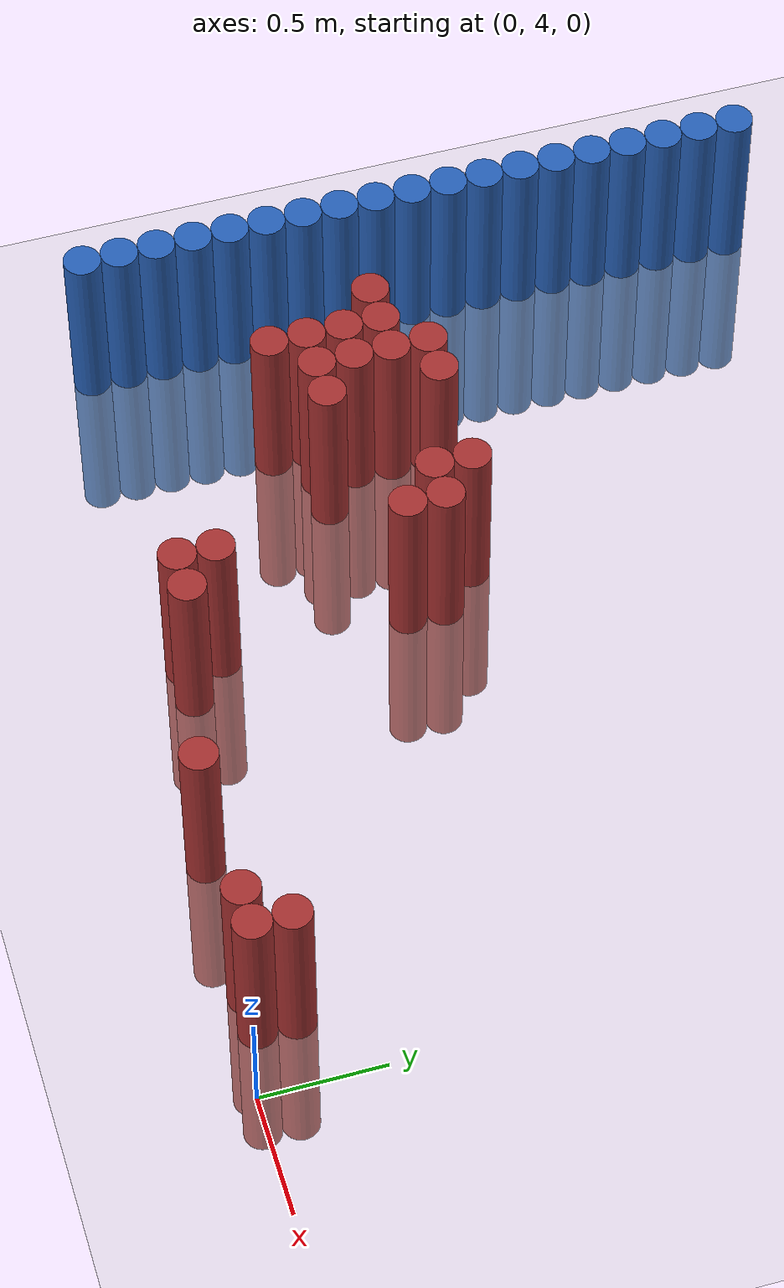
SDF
<sdf version="1.6">
 <world name="default">
  <model name="ground_plane">
   <static>1</static>
   <link name="link">
    <collision name="collision">
     <geometry><plane><normal>0 0 1</normal><size>100 100</size></plane></geometry>
     <surface><friction><ode><mu>100</mu><mu2>50</mu2></ode></friction></surface>
    </collision>
    <visual name="visual">
     <cast_shadows>0</cast_shadows>
     <geometry><plane><normal>0 0 1</normal><size>100 100</size></plane></geometry>
     <material>
      <script><uri>file://media/materials/scripts/gazebo.material</uri><name>Gazebo/Grey</name></script>
     </material>
    </visual>
   </link>
  </model>
  <model name="unit_cylinder_171">
   <static>1</static>
   <pose>-3.425000 4.225000 0.000000 0.000000 0.000000 0.000000</pose>
   <link name="link">
    <inertial>
     <mass>1</mass>
     <inertia><ixx>0.145833</ixx><ixy>0</ixy><ixz>0</ixz><iyy>0.145833</iyy><iyz>0</iyz><izz>0.125</izz></inertia>
    </inertial>
    <collision name="collision">
     <geometry><cylinder><radius>0.075000</radius><length>1.5</length></cylinder></geometry>
    </collision>
    <visual name="visual">
     <geometry><cylinder><radius>0.075000</radius><length>1.5</length></cylinder></geometry>
     <material>
      <ambient>0.152000 0.379000 0.720000 1</ambient>
      <diffuse>0.152000 0.379000 0.720000 1</diffuse>
     </material>
     <material>
      <script><name>Gazebo/Grey</name><uri>file://media/materials/scripts/gazebo.material</uri></script>
     </material>
    </visual>
   </link>
  </model>
  <model name="unit_cylinder_173">
   <static>1</static>
   <pose>-3.425000 4.375000 0.000000 0.000000 0.000000 0.000000</pose>
   <link name="link">
    <inertial>
     <mass>1</mass>
     <inertia><ixx>0.145833</ixx><ixy>0</ixy><ixz>0</ixz><iyy>0.145833</iyy><iyz>0</iyz><izz>0.125</izz></inertia>
    </inertial>
    <collision name="collision">
     <geometry><cylinder><radius>0.075000</radius><length>1.5</length></cylinder></geometry>
    </collision>
    <visual name="visual">
     <geometry><cylinder><radius>0.075000</radius><length>1.5</length></cylinder></geometry>
     <material>
      <ambient>0.152000 0.379000 0.720000 1</ambient>
      <diffuse>0.152000 0.379000 0.720000 1</diffuse>
     </material>
     <material>
      <script><name>Gazebo/Grey</name><uri>file://media/materials/scripts/gazebo.material</uri></script>
     </material>
    </visual>
   </link>
  </model>
  <model name="unit_cylinder_175">
   <static>1</static>
   <pose>-3.425000 4.525000 0.000000 0.000000 0.000000 0.000000</pose>
   <link name="link">
    <inertial>
     <mass>1</mass>
     <inertia><ixx>0.145833</ixx><ixy>0</ixy><ixz>0</ixz><iyy>0.145833</iyy><iyz>0</iyz><izz>0.125</izz></inertia>
    </inertial>
    <collision name="collision">
     <geometry><cylinder><radius>0.075000</radius><length>1.5</length></cylinder></geometry>
    </collision>
    <visual name="visual">
     <geometry><cylinder><radius>0.075000</radius><length>1.5</length></cylinder></geometry>
     <material>
      <ambient>0.152000 0.379000 0.720000 1</ambient>
      <diffuse>0.152000 0.379000 0.720000 1</diffuse>
     </material>
     <material>
      <script><name>Gazebo/Grey</name><uri>file://media/materials/scripts/gazebo.material</uri></script>
     </material>
    </visual>
   </link>
  </model>
  <model name="unit_cylinder_177">
   <static>1</static>
   <pose>-3.425000 4.675000 0.000000 0.000000 0.000000 0.000000</pose>
   <link name="link">
    <inertial>
     <mass>1</mass>
     <inertia><ixx>0.145833</ixx><ixy>0</ixy><ixz>0</ixz><iyy>0.145833</iyy><iyz>0</iyz><izz>0.125</izz></inertia>
    </inertial>
    <collision name="collision">
     <geometry><cylinder><radius>0.075000</radius><length>1.5</length></cylinder></geometry>
    </collision>
    <visual name="visual">
     <geometry><cylinder><radius>0.075000</radius><length>1.5</length></cylinder></geometry>
     <material>
      <ambient>0.152000 0.379000 0.720000 1</ambient>
      <diffuse>0.152000 0.379000 0.720000 1</diffuse>
     </material>
     <material>
      <script><name>Gazebo/Grey</name><uri>file://media/materials/scripts/gazebo.material</uri></script>
     </material>
    </visual>
   </link>
  </model>
  <model name="unit_cylinder_179">
   <static>1</static>
   <pose>-3.425000 4.825000 0.000000 0.000000 0.000000 0.000000</pose>
   <link name="link">
    <inertial>
     <mass>1</mass>
     <inertia><ixx>0.145833</ixx><ixy>0</ixy><ixz>0</ixz><iyy>0.145833</iyy><iyz>0</iyz><izz>0.125</izz></inertia>
    </inertial>
    <collision name="collision">
     <geometry><cylinder><radius>0.075000</radius><length>1.5</length></cylinder></geometry>
    </collision>
    <visual name="visual">
     <geometry><cylinder><radius>0.075000</radius><length>1.5</length></cylinder></geometry>
     <material>
      <ambient>0.152000 0.379000 0.720000 1</ambient>
      <diffuse>0.152000 0.379000 0.720000 1</diffuse>
     </material>
     <material>
      <script><name>Gazebo/Grey</name><uri>file://media/materials/scripts/gazebo.material</uri></script>
     </material>
    </visual>
   </link>
  </model>
  <model name="unit_cylinder_181">
   <static>1</static>
   <pose>-3.425000 4.975000 0.000000 0.000000 0.000000 0.000000</pose>
   <link name="link">
    <inertial>
     <mass>1</mass>
     <inertia><ixx>0.145833</ixx><ixy>0</ixy><ixz>0</ixz><iyy>0.145833</iyy><iyz>0</iyz><izz>0.125</izz></inertia>
    </inertial>
    <collision name="collision">
     <geometry><cylinder><radius>0.075000</radius><length>1.5</length></cylinder></geometry>
    </collision>
    <visual name="visual">
     <geometry><cylinder><radius>0.075000</radius><length>1.5</length></cylinder></geometry>
     <material>
      <ambient>0.152000 0.379000 0.720000 1</ambient>
      <diffuse>0.152000 0.379000 0.720000 1</diffuse>
     </material>
     <material>
      <script><name>Gazebo/Grey</name><uri>file://media/materials/scripts/gazebo.material</uri></script>
     </material>
    </visual>
   </link>
  </model>
  <model name="unit_cylinder_183">
   <static>1</static>
   <pose>-3.425000 5.125000 0.000000 0.000000 0.000000 0.000000</pose>
   <link name="link">
    <inertial>
     <mass>1</mass>
     <inertia><ixx>0.145833</ixx><ixy>0</ixy><ixz>0</ixz><iyy>0.145833</iyy><iyz>0</iyz><izz>0.125</izz></inertia>
    </inertial>
    <collision name="collision">
     <geometry><cylinder><radius>0.075000</radius><length>1.5</length></cylinder></geometry>
    </collision>
    <visual name="visual">
     <geometry><cylinder><radius>0.075000</radius><length>1.5</length></cylinder></geometry>
     <material>
      <ambient>0.152000 0.379000 0.720000 1</ambient>
      <diffuse>0.152000 0.379000 0.720000 1</diffuse>
     </material>
     <material>
      <script><name>Gazebo/Grey</name><uri>file://media/materials/scripts/gazebo.material</uri></script>
     </material>
    </visual>
   </link>
  </model>
  <model name="unit_cylinder_185">
   <static>1</static>
   <pose>-3.425000 5.275000 0.000000 0.000000 0.000000 0.000000</pose>
   <link name="link">
    <inertial>
     <mass>1</mass>
     <inertia><ixx>0.145833</ixx><ixy>0</ixy><ixz>0</ixz><iyy>0.145833</iyy><iyz>0</iyz><izz>0.125</izz></inertia>
    </inertial>
    <collision name="collision">
     <geometry><cylinder><radius>0.075000</radius><length>1.5</length></cylinder></geometry>
    </collision>
    <visual name="visual">
     <geometry><cylinder><radius>0.075000</radius><length>1.5</length></cylinder></geometry>
     <material>
      <ambient>0.152000 0.379000 0.720000 1</ambient>
      <diffuse>0.152000 0.379000 0.720000 1</diffuse>
     </material>
     <material>
      <script><name>Gazebo/Grey</name><uri>file://media/materials/scripts/gazebo.material</uri></script>
     </material>
    </visual>
   </link>
  </model>
  <model name="unit_cylinder_187">
   <static>1</static>
   <pose>-3.425000 5.425000 0.000000 0.000000 0.000000 0.000000</pose>
   <link name="link">
    <inertial>
     <mass>1</mass>
     <inertia><ixx>0.145833</ixx><ixy>0</ixy><ixz>0</ixz><iyy>0.145833</iyy><iyz>0</iyz><izz>0.125</izz></inertia>
    </inertial>
    <collision name="collision">
     <geometry><cylinder><radius>0.075000</radius><length>1.5</length></cylinder></geometry>
    </collision>
    <visual name="visual">
     <geometry><cylinder><radius>0.075000</radius><length>1.5</length></cylinder></geometry>
     <material>
      <ambient>0.152000 0.379000 0.720000 1</ambient>
      <diffuse>0.152000 0.379000 0.720000 1</diffuse>
     </material>
     <material>
      <script><name>Gazebo/Grey</name><uri>file://media/materials/scripts/gazebo.material</uri></script>
     </material>
    </visual>
   </link>
  </model>
  <model name="unit_cylinder_189">
   <static>1</static>
   <pose>-3.425000 5.575000 0.000000 0.000000 0.000000 0.000000</pose>
   <link name="link">
    <inertial>
     <mass>1</mass>
     <inertia><ixx>0.145833</ixx><ixy>0</ixy><ixz>0</ixz><iyy>0.145833</iyy><iyz>0</iyz><izz>0.125</izz></inertia>
    </inertial>
    <collision name="collision">
     <geometry><cylinder><radius>0.075000</radius><length>1.5</length></cylinder></geometry>
    </collision>
    <visual name="visual">
     <geometry><cylinder><radius>0.075000</radius><length>1.5</length></cylinder></geometry>
     <material>
      <ambient>0.152000 0.379000 0.720000 1</ambient>
      <diffuse>0.152000 0.379000 0.720000 1</diffuse>
     </material>
     <material>
      <script><name>Gazebo/Grey</name><uri>file://media/materials/scripts/gazebo.material</uri></script>
     </material>
    </visual>
   </link>
  </model>
  <model name="unit_cylinder_191">
   <static>1</static>
   <pose>-3.425000 5.725000 0.000000 0.000000 0.000000 0.000000</pose>
   <link name="link">
    <inertial>
     <mass>1</mass>
     <inertia><ixx>0.145833</ixx><ixy>0</ixy><ixz>0</ixz><iyy>0.145833</iyy><iyz>0</iyz><izz>0.125</izz></inertia>
    </inertial>
    <collision name="collision">
     <geometry><cylinder><radius>0.075000</radius><length>1.5</length></cylinder></geometry>
    </collision>
    <visual name="visual">
     <geometry><cylinder><radius>0.075000</radius><length>1.5</length></cylinder></geometry>
     <material>
      <ambient>0.152000 0.379000 0.720000 1</ambient>
      <diffuse>0.152000 0.379000 0.720000 1</diffuse>
     </material>
     <material>
      <script><name>Gazebo/Grey</name><uri>file://media/materials/scripts/gazebo.material</uri></script>
     </material>
    </visual>
   </link>
  </model>
  <model name="unit_cylinder_193">
   <static>1</static>
   <pose>-3.425000 5.875000 0.000000 0.000000 0.000000 0.000000</pose>
   <link name="link">
    <inertial>
     <mass>1</mass>
     <inertia><ixx>0.145833</ixx><ixy>0</ixy><ixz>0</ixz><iyy>0.145833</iyy><iyz>0</iyz><izz>0.125</izz></inertia>
    </inertial>
    <collision name="collision">
     <geometry><cylinder><radius>0.075000</radius><length>1.5</length></cylinder></geometry>
    </collision>
    <visual name="visual">
     <geometry><cylinder><radius>0.075000</radius><length>1.5</length></cylinder></geometry>
     <material>
      <ambient>0.152000 0.379000 0.720000 1</ambient>
      <diffuse>0.152000 0.379000 0.720000 1</diffuse>
     </material>
     <material>
      <script><name>Gazebo/Grey</name><uri>file://media/materials/scripts/gazebo.material</uri></script>
     </material>
    </visual>
   </link>
  </model>
  <model name="unit_cylinder_195">
   <static>1</static>
   <pose>-3.425000 6.025000 0.000000 0.000000 0.000000 0.000000</pose>
   <link name="link">
    <inertial>
     <mass>1</mass>
     <inertia><ixx>0.145833</ixx><ixy>0</ixy><ixz>0</ixz><iyy>0.145833</iyy><iyz>0</iyz><izz>0.125</izz></inertia>
    </inertial>
    <collision name="collision">
     <geometry><cylinder><radius>0.075000</radius><length>1.5</length></cylinder></geometry>
    </collision>
    <visual name="visual">
     <geometry><cylinder><radius>0.075000</radius><length>1.5</length></cylinder></geometry>
     <material>
      <ambient>0.152000 0.379000 0.720000 1</ambient>
      <diffuse>0.152000 0.379000 0.720000 1</diffuse>
     </material>
     <material>
      <script><name>Gazebo/Grey</name><uri>file://media/materials/scripts/gazebo.material</uri></script>
     </material>
    </visual>
   </link>
  </model>
  <model name="unit_cylinder_197">
   <static>1</static>
   <pose>-3.425000 6.175000 0.000000 0.000000 0.000000 0.000000</pose>
   <link name="link">
    <inertial>
     <mass>1</mass>
     <inertia><ixx>0.145833</ixx><ixy>0</ixy><ixz>0</ixz><iyy>0.145833</iyy><iyz>0</iyz><izz>0.125</izz></inertia>
    </inertial>
    <collision name="collision">
     <geometry><cylinder><radius>0.075000</radius><length>1.5</length></cylinder></geometry>
    </collision>
    <visual name="visual">
     <geometry><cylinder><radius>0.075000</radius><length>1.5</length></cylinder></geometry>
     <material>
      <ambient>0.152000 0.379000 0.720000 1</ambient>
      <diffuse>0.152000 0.379000 0.720000 1</diffuse>
     </material>
     <material>
      <script><name>Gazebo/Grey</name><uri>file://media/materials/scripts/gazebo.material</uri></script>
     </material>
    </visual>
   </link>
  </model>
  <model name="unit_cylinder_199">
   <static>1</static>
   <pose>-3.425000 6.325000 0.000000 0.000000 0.000000 0.000000</pose>
   <link name="link">
    <inertial>
     <mass>1</mass>
     <inertia><ixx>0.145833</ixx><ixy>0</ixy><ixz>0</ixz><iyy>0.145833</iyy><iyz>0</iyz><izz>0.125</izz></inertia>
    </inertial>
    <collision name="collision">
     <geometry><cylinder><radius>0.075000</radius><length>1.5</length></cylinder></geometry>
    </collision>
    <visual name="visual">
     <geometry><cylinder><radius>0.075000</radius><length>1.5</length></cylinder></geometry>
     <material>
      <ambient>0.152000 0.379000 0.720000 1</ambient>
      <diffuse>0.152000 0.379000 0.720000 1</diffuse>
     </material>
     <material>
      <script><name>Gazebo/Grey</name><uri>file://media/materials/scripts/gazebo.material</uri></script>
     </material>
    </visual>
   </link>
  </model>
  <model name="unit_cylinder_201">
   <static>1</static>
   <pose>-3.425000 6.475000 0.000000 0.000000 0.000000 0.000000</pose>
   <link name="link">
    <inertial>
     <mass>1</mass>
     <inertia><ixx>0.145833</ixx><ixy>0</ixy><ixz>0</ixz><iyy>0.145833</iyy><iyz>0</iyz><izz>0.125</izz></inertia>
    </inertial>
    <collision name="collision">
     <geometry><cylinder><radius>0.075000</radius><length>1.5</length></cylinder></geometry>
    </collision>
    <visual name="visual">
     <geometry><cylinder><radius>0.075000</radius><length>1.5</length></cylinder></geometry>
     <material>
      <ambient>0.152000 0.379000 0.720000 1</ambient>
      <diffuse>0.152000 0.379000 0.720000 1</diffuse>
     </material>
     <material>
      <script><name>Gazebo/Grey</name><uri>file://media/materials/scripts/gazebo.material</uri></script>
     </material>
    </visual>
   </link>
  </model>
  <model name="unit_cylinder_203">
   <static>1</static>
   <pose>-3.425000 6.625000 0.000000 0.000000 0.000000 0.000000</pose>
   <link name="link">
    <inertial>
     <mass>1</mass>
     <inertia><ixx>0.145833</ixx><ixy>0</ixy><ixz>0</ixz><iyy>0.145833</iyy><iyz>0</iyz><izz>0.125</izz></inertia>
    </inertial>
    <collision name="collision">
     <geometry><cylinder><radius>0.075000</radius><length>1.5</length></cylinder></geometry>
    </collision>
    <visual name="visual">
     <geometry><cylinder><radius>0.075000</radius><length>1.5</length></cylinder></geometry>
     <material>
      <ambient>0.152000 0.379000 0.720000 1</ambient>
      <diffuse>0.152000 0.379000 0.720000 1</diffuse>
     </material>
     <material>
      <script><name>Gazebo/Grey</name><uri>file://media/materials/scripts/gazebo.material</uri></script>
     </material>
    </visual>
   </link>
  </model>
  <model name="unit_cylinder_205">
   <static>1</static>
   <pose>-3.425000 6.775000 0.000000 0.000000 0.000000 0.000000</pose>
   <link name="link">
    <inertial>
     <mass>1</mass>
     <inertia><ixx>0.145833</ixx><ixy>0</ixy><ixz>0</ixz><iyy>0.145833</iyy><iyz>0</iyz><izz>0.125</izz></inertia>
    </inertial>
    <collision name="collision">
     <geometry><cylinder><radius>0.075000</radius><length>1.5</length></cylinder></geometry>
    </collision>
    <visual name="visual">
     <geometry><cylinder><radius>0.075000</radius><length>1.5</length></cylinder></geometry>
     <material>
      <ambient>0.152000 0.379000 0.720000 1</ambient>
      <diffuse>0.152000 0.379000 0.720000 1</diffuse>
     </material>
     <material>
      <script><name>Gazebo/Grey</name><uri>file://media/materials/scripts/gazebo.material</uri></script>
     </material>
    </visual>
   </link>
  </model>
  <model name="unit_cylinder_207">
   <static>1</static>
   <pose>-3.425000 6.925000 0.000000 0.000000 0.000000 0.000000</pose>
   <link name="link">
    <inertial>
     <mass>1</mass>
     <inertia><ixx>0.145833</ixx><ixy>0</ixy><ixz>0</ixz><iyy>0.145833</iyy><iyz>0</iyz><izz>0.125</izz></inertia>
    </inertial>
    <collision name="collision">
     <geometry><cylinder><radius>0.075000</radius><length>1.5</length></cylinder></geometry>
    </collision>
    <visual name="visual">
     <geometry><cylinder><radius>0.075000</radius><length>1.5</length></cylinder></geometry>
     <material>
      <ambient>0.152000 0.379000 0.720000 1</ambient>
      <diffuse>0.152000 0.379000 0.720000 1</diffuse>
     </material>
     <material>
      <script><name>Gazebo/Grey</name><uri>file://media/materials/scripts/gazebo.material</uri></script>
     </material>
    </visual>
   </link>
  </model>
  <model name="unit_cylinder_249">
   <static>1</static>
   <pose>-3.425000 4.225000 0.000000 0.000000 0.000000 0.000000</pose>
   <link name="link">
    <inertial>
     <mass>1</mass>
     <inertia><ixx>0.145833</ixx><ixy>0</ixy><ixz>0</ixz><iyy>0.145833</iyy><iyz>0</iyz><izz>0.125</izz></inertia>
    </inertial>
    <collision name="collision">
     <geometry><cylinder><radius>0.075000</radius><length>1.5</length></cylinder></geometry>
    </collision>
    <visual name="visual">
     <geometry><cylinder><radius>0.075000</radius><length>1.5</length></cylinder></geometry>
     <material>
      <ambient>0.152000 0.379000 0.720000 1</ambient>
      <diffuse>0.152000 0.379000 0.720000 1</diffuse>
     </material>
     <material>
      <script><name>Gazebo/Grey</name><uri>file://media/materials/scripts/gazebo.material</uri></script>
     </material>
    </visual>
   </link>
  </model>
  <model name="unit_cylinder_250">
   <static>1</static>
   <pose>-3.425000 4.375000 0.000000 0.000000 0.000000 0.000000</pose>
   <link name="link">
    <inertial>
     <mass>1</mass>
     <inertia><ixx>0.145833</ixx><ixy>0</ixy><ixz>0</ixz><iyy>0.145833</iyy><iyz>0</iyz><izz>0.125</izz></inertia>
    </inertial>
    <collision name="collision">
     <geometry><cylinder><radius>0.075000</radius><length>1.5</length></cylinder></geometry>
    </collision>
    <visual name="visual">
     <geometry><cylinder><radius>0.075000</radius><length>1.5</length></cylinder></geometry>
     <material>
      <ambient>0.152000 0.379000 0.720000 1</ambient>
      <diffuse>0.152000 0.379000 0.720000 1</diffuse>
     </material>
     <material>
      <script><name>Gazebo/Grey</name><uri>file://media/materials/scripts/gazebo.material</uri></script>
     </material>
    </visual>
   </link>
  </model>
  <model name="unit_cylinder_251">
   <static>1</static>
   <pose>-3.425000 4.525000 0.000000 0.000000 0.000000 0.000000</pose>
   <link name="link">
    <inertial>
     <mass>1</mass>
     <inertia><ixx>0.145833</ixx><ixy>0</ixy><ixz>0</ixz><iyy>0.145833</iyy><iyz>0</iyz><izz>0.125</izz></inertia>
    </inertial>
    <collision name="collision">
     <geometry><cylinder><radius>0.075000</radius><length>1.5</length></cylinder></geometry>
    </collision>
    <visual name="visual">
     <geometry><cylinder><radius>0.075000</radius><length>1.5</length></cylinder></geometry>
     <material>
      <ambient>0.152000 0.379000 0.720000 1</ambient>
      <diffuse>0.152000 0.379000 0.720000 1</diffuse>
     </material>
     <material>
      <script><name>Gazebo/Grey</name><uri>file://media/materials/scripts/gazebo.material</uri></script>
     </material>
    </visual>
   </link>
  </model>
  <model name="unit_cylinder_252">
   <static>1</static>
   <pose>-3.425000 4.675000 0.000000 0.000000 0.000000 0.000000</pose>
   <link name="link">
    <inertial>
     <mass>1</mass>
     <inertia><ixx>0.145833</ixx><ixy>0</ixy><ixz>0</ixz><iyy>0.145833</iyy><iyz>0</iyz><izz>0.125</izz></inertia>
    </inertial>
    <collision name="collision">
     <geometry><cylinder><radius>0.075000</radius><length>1.5</length></cylinder></geometry>
    </collision>
    <visual name="visual">
     <geometry><cylinder><radius>0.075000</radius><length>1.5</length></cylinder></geometry>
     <material>
      <ambient>0.152000 0.379000 0.720000 1</ambient>
      <diffuse>0.152000 0.379000 0.720000 1</diffuse>
     </material>
     <material>
      <script><name>Gazebo/Grey</name><uri>file://media/materials/scripts/gazebo.material</uri></script>
     </material>
    </visual>
   </link>
  </model>
  <model name="unit_cylinder_253">
   <static>1</static>
   <pose>-3.425000 4.825000 0.000000 0.000000 0.000000 0.000000</pose>
   <link name="link">
    <inertial>
     <mass>1</mass>
     <inertia><ixx>0.145833</ixx><ixy>0</ixy><ixz>0</ixz><iyy>0.145833</iyy><iyz>0</iyz><izz>0.125</izz></inertia>
    </inertial>
    <collision name="collision">
     <geometry><cylinder><radius>0.075000</radius><length>1.5</length></cylinder></geometry>
    </collision>
    <visual name="visual">
     <geometry><cylinder><radius>0.075000</radius><length>1.5</length></cylinder></geometry>
     <material>
      <ambient>0.152000 0.379000 0.720000 1</ambient>
      <diffuse>0.152000 0.379000 0.720000 1</diffuse>
     </material>
     <material>
      <script><name>Gazebo/Grey</name><uri>file://media/materials/scripts/gazebo.material</uri></script>
     </material>
    </visual>
   </link>
  </model>
  <model name="unit_cylinder_254">
   <static>1</static>
   <pose>-3.425000 4.975000 0.000000 0.000000 0.000000 0.000000</pose>
   <link name="link">
    <inertial>
     <mass>1</mass>
     <inertia><ixx>0.145833</ixx><ixy>0</ixy><ixz>0</ixz><iyy>0.145833</iyy><iyz>0</iyz><izz>0.125</izz></inertia>
    </inertial>
    <collision name="collision">
     <geometry><cylinder><radius>0.075000</radius><length>1.5</length></cylinder></geometry>
    </collision>
    <visual name="visual">
     <geometry><cylinder><radius>0.075000</radius><length>1.5</length></cylinder></geometry>
     <material>
      <ambient>0.152000 0.379000 0.720000 1</ambient>
      <diffuse>0.152000 0.379000 0.720000 1</diffuse>
     </material>
     <material>
      <script><name>Gazebo/Grey</name><uri>file://media/materials/scripts/gazebo.material</uri></script>
     </material>
    </visual>
   </link>
  </model>
  <model name="unit_cylinder_255">
   <static>1</static>
   <pose>-3.425000 5.125000 0.000000 0.000000 0.000000 0.000000</pose>
   <link name="link">
    <inertial>
     <mass>1</mass>
     <inertia><ixx>0.145833</ixx><ixy>0</ixy><ixz>0</ixz><iyy>0.145833</iyy><iyz>0</iyz><izz>0.125</izz></inertia>
    </inertial>
    <collision name="collision">
     <geometry><cylinder><radius>0.075000</radius><length>1.5</length></cylinder></geometry>
    </collision>
    <visual name="visual">
     <geometry><cylinder><radius>0.075000</radius><length>1.5</length></cylinder></geometry>
     <material>
      <ambient>0.152000 0.379000 0.720000 1</ambient>
      <diffuse>0.152000 0.379000 0.720000 1</diffuse>
     </material>
     <material>
      <script><name>Gazebo/Grey</name><uri>file://media/materials/scripts/gazebo.material</uri></script>
     </material>
    </visual>
   </link>
  </model>
  <model name="unit_cylinder_256">
   <static>1</static>
   <pose>-3.425000 5.275000 0.000000 0.000000 0.000000 0.000000</pose>
   <link name="link">
    <inertial>
     <mass>1</mass>
     <inertia><ixx>0.145833</ixx><ixy>0</ixy><ixz>0</ixz><iyy>0.145833</iyy><iyz>0</iyz><izz>0.125</izz></inertia>
    </inertial>
    <collision name="collision">
     <geometry><cylinder><radius>0.075000</radius><length>1.5</length></cylinder></geometry>
    </collision>
    <visual name="visual">
     <geometry><cylinder><radius>0.075000</radius><length>1.5</length></cylinder></geometry>
     <material>
      <ambient>0.152000 0.379000 0.720000 1</ambient>
      <diffuse>0.152000 0.379000 0.720000 1</diffuse>
     </material>
     <material>
      <script><name>Gazebo/Grey</name><uri>file://media/materials/scripts/gazebo.material</uri></script>
     </material>
    </visual>
   </link>
  </model>
  <model name="unit_cylinder_257">
   <static>1</static>
   <pose>-3.425000 5.425000 0.000000 0.000000 0.000000 0.000000</pose>
   <link name="link">
    <inertial>
     <mass>1</mass>
     <inertia><ixx>0.145833</ixx><ixy>0</ixy><ixz>0</ixz><iyy>0.145833</iyy><iyz>0</iyz><izz>0.125</izz></inertia>
    </inertial>
    <collision name="collision">
     <geometry><cylinder><radius>0.075000</radius><length>1.5</length></cylinder></geometry>
    </collision>
    <visual name="visual">
     <geometry><cylinder><radius>0.075000</radius><length>1.5</length></cylinder></geometry>
     <material>
      <ambient>0.152000 0.379000 0.720000 1</ambient>
      <diffuse>0.152000 0.379000 0.720000 1</diffuse>
     </material>
     <material>
      <script><name>Gazebo/Grey</name><uri>file://media/materials/scripts/gazebo.material</uri></script>
     </material>
    </visual>
   </link>
  </model>
  <model name="unit_cylinder_289">
   <static>1</static>
   <pose>-2.975000 5.275000 0.000000 0.000000 0.000000 0.000000</pose>
   <link name="link">
    <inertial>
     <mass>1</mass>
     <inertia><ixx>0.145833</ixx><ixy>0</ixy><ixz>0</ixz><iyy>0.145833</iyy><iyz>0</iyz><izz>0.125</izz></inertia>
    </inertial>
    <collision name="collision">
     <geometry><cylinder><radius>0.075000</radius><length>1.5</length></cylinder></geometry>
    </collision>
    <visual name="visual">
     <geometry><cylinder><radius>0.075000</radius><length>1.5</length></cylinder></geometry>
     <material>
      <ambient>0.648000 0.192000 0.192000 1</ambient>
      <diffuse>0.648000 0.192000 0.192000 1</diffuse>
     </material>
     <material>
      <script><name>Gazebo/Grey</name><uri>file://media/materials/scripts/gazebo.material</uri></script>
     </material>
    </visual>
   </link>
  </model>
  <model name="unit_cylinder_295">
   <static>1</static>
   <pose>-2.825000 4.825000 0.000000 0.000000 0.000000 0.000000</pose>
   <link name="link">
    <inertial>
     <mass>1</mass>
     <inertia><ixx>0.145833</ixx><ixy>0</ixy><ixz>0</ixz><iyy>0.145833</iyy><iyz>0</iyz><izz>0.125</izz></inertia>
    </inertial>
    <collision name="collision">
     <geometry><cylinder><radius>0.075000</radius><length>1.5</length></cylinder></geometry>
    </collision>
    <visual name="visual">
     <geometry><cylinder><radius>0.075000</radius><length>1.5</length></cylinder></geometry>
     <material>
      <ambient>0.648000 0.192000 0.192000 1</ambient>
      <diffuse>0.648000 0.192000 0.192000 1</diffuse>
     </material>
     <material>
      <script><name>Gazebo/Grey</name><uri>file://media/materials/scripts/gazebo.material</uri></script>
     </material>
    </visual>
   </link>
  </model>
  <model name="unit_cylinder_296">
   <static>1</static>
   <pose>-2.825000 4.975000 0.000000 0.000000 0.000000 0.000000</pose>
   <link name="link">
    <inertial>
     <mass>1</mass>
     <inertia><ixx>0.145833</ixx><ixy>0</ixy><ixz>0</ixz><iyy>0.145833</iyy><iyz>0</iyz><izz>0.125</izz></inertia>
    </inertial>
    <collision name="collision">
     <geometry><cylinder><radius>0.075000</radius><length>1.5</length></cylinder></geometry>
    </collision>
    <visual name="visual">
     <geometry><cylinder><radius>0.075000</radius><length>1.5</length></cylinder></geometry>
     <material>
      <ambient>0.648000 0.192000 0.192000 1</ambient>
      <diffuse>0.648000 0.192000 0.192000 1</diffuse>
     </material>
     <material>
      <script><name>Gazebo/Grey</name><uri>file://media/materials/scripts/gazebo.material</uri></script>
     </material>
    </visual>
   </link>
  </model>
  <model name="unit_cylinder_297">
   <static>1</static>
   <pose>-2.825000 5.125000 0.000000 0.000000 0.000000 0.000000</pose>
   <link name="link">
    <inertial>
     <mass>1</mass>
     <inertia><ixx>0.145833</ixx><ixy>0</ixy><ixz>0</ixz><iyy>0.145833</iyy><iyz>0</iyz><izz>0.125</izz></inertia>
    </inertial>
    <collision name="collision">
     <geometry><cylinder><radius>0.075000</radius><length>1.5</length></cylinder></geometry>
    </collision>
    <visual name="visual">
     <geometry><cylinder><radius>0.075000</radius><length>1.5</length></cylinder></geometry>
     <material>
      <ambient>0.648000 0.192000 0.192000 1</ambient>
      <diffuse>0.648000 0.192000 0.192000 1</diffuse>
     </material>
     <material>
      <script><name>Gazebo/Grey</name><uri>file://media/materials/scripts/gazebo.material</uri></script>
     </material>
    </visual>
   </link>
  </model>
  <model name="unit_cylinder_298">
   <static>1</static>
   <pose>-2.825000 5.275000 0.000000 0.000000 0.000000 0.000000</pose>
   <link name="link">
    <inertial>
     <mass>1</mass>
     <inertia><ixx>0.145833</ixx><ixy>0</ixy><ixz>0</ixz><iyy>0.145833</iyy><iyz>0</iyz><izz>0.125</izz></inertia>
    </inertial>
    <collision name="collision">
     <geometry><cylinder><radius>0.075000</radius><length>1.5</length></cylinder></geometry>
    </collision>
    <visual name="visual">
     <geometry><cylinder><radius>0.075000</radius><length>1.5</length></cylinder></geometry>
     <material>
      <ambient>0.648000 0.192000 0.192000 1</ambient>
      <diffuse>0.648000 0.192000 0.192000 1</diffuse>
     </material>
     <material>
      <script><name>Gazebo/Grey</name><uri>file://media/materials/scripts/gazebo.material</uri></script>
     </material>
    </visual>
   </link>
  </model>
  <model name="unit_cylinder_307">
   <static>1</static>
   <pose>-2.675000 4.975000 0.000000 0.000000 0.000000 0.000000</pose>
   <link name="link">
    <inertial>
     <mass>1</mass>
     <inertia><ixx>0.145833</ixx><ixy>0</ixy><ixz>0</ixz><iyy>0.145833</iyy><iyz>0</iyz><izz>0.125</izz></inertia>
    </inertial>
    <collision name="collision">
     <geometry><cylinder><radius>0.075000</radius><length>1.5</length></cylinder></geometry>
    </collision>
    <visual name="visual">
     <geometry><cylinder><radius>0.075000</radius><length>1.5</length></cylinder></geometry>
     <material>
      <ambient>0.648000 0.192000 0.192000 1</ambient>
      <diffuse>0.648000 0.192000 0.192000 1</diffuse>
     </material>
     <material>
      <script><name>Gazebo/Grey</name><uri>file://media/materials/scripts/gazebo.material</uri></script>
     </material>
    </visual>
   </link>
  </model>
  <model name="unit_cylinder_308">
   <static>1</static>
   <pose>-2.675000 5.125000 0.000000 0.000000 0.000000 0.000000</pose>
   <link name="link">
    <inertial>
     <mass>1</mass>
     <inertia><ixx>0.145833</ixx><ixy>0</ixy><ixz>0</ixz><iyy>0.145833</iyy><iyz>0</iyz><izz>0.125</izz></inertia>
    </inertial>
    <collision name="collision">
     <geometry><cylinder><radius>0.075000</radius><length>1.5</length></cylinder></geometry>
    </collision>
    <visual name="visual">
     <geometry><cylinder><radius>0.075000</radius><length>1.5</length></cylinder></geometry>
     <material>
      <ambient>0.648000 0.192000 0.192000 1</ambient>
      <diffuse>0.648000 0.192000 0.192000 1</diffuse>
     </material>
     <material>
      <script><name>Gazebo/Grey</name><uri>file://media/materials/scripts/gazebo.material</uri></script>
     </material>
    </visual>
   </link>
  </model>
  <model name="unit_cylinder_309">
   <static>1</static>
   <pose>-2.675000 5.275000 0.000000 0.000000 0.000000 0.000000</pose>
   <link name="link">
    <inertial>
     <mass>1</mass>
     <inertia><ixx>0.145833</ixx><ixy>0</ixy><ixz>0</ixz><iyy>0.145833</iyy><iyz>0</iyz><izz>0.125</izz></inertia>
    </inertial>
    <collision name="collision">
     <geometry><cylinder><radius>0.075000</radius><length>1.5</length></cylinder></geometry>
    </collision>
    <visual name="visual">
     <geometry><cylinder><radius>0.075000</radius><length>1.5</length></cylinder></geometry>
     <material>
      <ambient>0.648000 0.192000 0.192000 1</ambient>
      <diffuse>0.648000 0.192000 0.192000 1</diffuse>
     </material>
     <material>
      <script><name>Gazebo/Grey</name><uri>file://media/materials/scripts/gazebo.material</uri></script>
     </material>
    </visual>
   </link>
  </model>
  <model name="unit_cylinder_310">
   <static>1</static>
   <pose>-2.675000 5.425000 0.000000 0.000000 0.000000 0.000000</pose>
   <link name="link">
    <inertial>
     <mass>1</mass>
     <inertia><ixx>0.145833</ixx><ixy>0</ixy><ixz>0</ixz><iyy>0.145833</iyy><iyz>0</iyz><izz>0.125</izz></inertia>
    </inertial>
    <collision name="collision">
     <geometry><cylinder><radius>0.075000</radius><length>1.5</length></cylinder></geometry>
    </collision>
    <visual name="visual">
     <geometry><cylinder><radius>0.075000</radius><length>1.5</length></cylinder></geometry>
     <material>
      <ambient>0.648000 0.192000 0.192000 1</ambient>
      <diffuse>0.648000 0.192000 0.192000 1</diffuse>
     </material>
     <material>
      <script><name>Gazebo/Grey</name><uri>file://media/materials/scripts/gazebo.material</uri></script>
     </material>
    </visual>
   </link>
  </model>
  <model name="unit_cylinder_323">
   <static>1</static>
   <pose>-2.525000 4.975000 0.000000 0.000000 0.000000 0.000000</pose>
   <link name="link">
    <inertial>
     <mass>1</mass>
     <inertia><ixx>0.145833</ixx><ixy>0</ixy><ixz>0</ixz><iyy>0.145833</iyy><iyz>0</iyz><izz>0.125</izz></inertia>
    </inertial>
    <collision name="collision">
     <geometry><cylinder><radius>0.075000</radius><length>1.5</length></cylinder></geometry>
    </collision>
    <visual name="visual">
     <geometry><cylinder><radius>0.075000</radius><length>1.5</length></cylinder></geometry>
     <material>
      <ambient>0.648000 0.192000 0.192000 1</ambient>
      <diffuse>0.648000 0.192000 0.192000 1</diffuse>
     </material>
     <material>
      <script><name>Gazebo/Grey</name><uri>file://media/materials/scripts/gazebo.material</uri></script>
     </material>
    </visual>
   </link>
  </model>
  <model name="unit_cylinder_324">
   <static>1</static>
   <pose>-2.525000 5.425000 0.000000 0.000000 0.000000 0.000000</pose>
   <link name="link">
    <inertial>
     <mass>1</mass>
     <inertia><ixx>0.145833</ixx><ixy>0</ixy><ixz>0</ixz><iyy>0.145833</iyy><iyz>0</iyz><izz>0.125</izz></inertia>
    </inertial>
    <collision name="collision">
     <geometry><cylinder><radius>0.075000</radius><length>1.5</length></cylinder></geometry>
    </collision>
    <visual name="visual">
     <geometry><cylinder><radius>0.075000</radius><length>1.5</length></cylinder></geometry>
     <material>
      <ambient>0.648000 0.192000 0.192000 1</ambient>
      <diffuse>0.648000 0.192000 0.192000 1</diffuse>
     </material>
     <material>
      <script><name>Gazebo/Grey</name><uri>file://media/materials/scripts/gazebo.material</uri></script>
     </material>
    </visual>
   </link>
  </model>
  <model name="unit_cylinder_355">
   <static>1</static>
   <pose>-2.075000 5.275000 0.000000 0.000000 0.000000 0.000000</pose>
   <link name="link">
    <inertial>
     <mass>1</mass>
     <inertia><ixx>0.145833</ixx><ixy>0</ixy><ixz>0</ixz><iyy>0.145833</iyy><iyz>0</iyz><izz>0.125</izz></inertia>
    </inertial>
    <collision name="collision">
     <geometry><cylinder><radius>0.075000</radius><length>1.5</length></cylinder></geometry>
    </collision>
    <visual name="visual">
     <geometry><cylinder><radius>0.075000</radius><length>1.5</length></cylinder></geometry>
     <material>
      <ambient>0.648000 0.192000 0.192000 1</ambient>
      <diffuse>0.648000 0.192000 0.192000 1</diffuse>
     </material>
     <material>
      <script><name>Gazebo/Grey</name><uri>file://media/materials/scripts/gazebo.material</uri></script>
     </material>
    </visual>
   </link>
  </model>
  <model name="unit_cylinder_356">
   <static>1</static>
   <pose>-2.075000 5.425000 0.000000 0.000000 0.000000 0.000000</pose>
   <link name="link">
    <inertial>
     <mass>1</mass>
     <inertia><ixx>0.145833</ixx><ixy>0</ixy><ixz>0</ixz><iyy>0.145833</iyy><iyz>0</iyz><izz>0.125</izz></inertia>
    </inertial>
    <collision name="collision">
     <geometry><cylinder><radius>0.075000</radius><length>1.5</length></cylinder></geometry>
    </collision>
    <visual name="visual">
     <geometry><cylinder><radius>0.075000</radius><length>1.5</length></cylinder></geometry>
     <material>
      <ambient>0.648000 0.192000 0.192000 1</ambient>
      <diffuse>0.648000 0.192000 0.192000 1</diffuse>
     </material>
     <material>
      <script><name>Gazebo/Grey</name><uri>file://media/materials/scripts/gazebo.material</uri></script>
     </material>
    </visual>
   </link>
  </model>
  <model name="unit_cylinder_359">
   <static>1</static>
   <pose>-1.925000 4.225000 0.000000 0.000000 0.000000 0.000000</pose>
   <link name="link">
    <inertial>
     <mass>1</mass>
     <inertia><ixx>0.145833</ixx><ixy>0</ixy><ixz>0</ixz><iyy>0.145833</iyy><iyz>0</iyz><izz>0.125</izz></inertia>
    </inertial>
    <collision name="collision">
     <geometry><cylinder><radius>0.075000</radius><length>1.5</length></cylinder></geometry>
    </collision>
    <visual name="visual">
     <geometry><cylinder><radius>0.075000</radius><length>1.5</length></cylinder></geometry>
     <material>
      <ambient>0.648000 0.192000 0.192000 1</ambient>
      <diffuse>0.648000 0.192000 0.192000 1</diffuse>
     </material>
     <material>
      <script><name>Gazebo/Grey</name><uri>file://media/materials/scripts/gazebo.material</uri></script>
     </material>
    </visual>
   </link>
  </model>
  <model name="unit_cylinder_360">
   <static>1</static>
   <pose>-1.925000 4.375000 0.000000 0.000000 0.000000 0.000000</pose>
   <link name="link">
    <inertial>
     <mass>1</mass>
     <inertia><ixx>0.145833</ixx><ixy>0</ixy><ixz>0</ixz><iyy>0.145833</iyy><iyz>0</iyz><izz>0.125</izz></inertia>
    </inertial>
    <collision name="collision">
     <geometry><cylinder><radius>0.075000</radius><length>1.5</length></cylinder></geometry>
    </collision>
    <visual name="visual">
     <geometry><cylinder><radius>0.075000</radius><length>1.5</length></cylinder></geometry>
     <material>
      <ambient>0.648000 0.192000 0.192000 1</ambient>
      <diffuse>0.648000 0.192000 0.192000 1</diffuse>
     </material>
     <material>
      <script><name>Gazebo/Grey</name><uri>file://media/materials/scripts/gazebo.material</uri></script>
     </material>
    </visual>
   </link>
  </model>
  <model name="unit_cylinder_361">
   <static>1</static>
   <pose>-1.925000 5.125000 0.000000 0.000000 0.000000 0.000000</pose>
   <link name="link">
    <inertial>
     <mass>1</mass>
     <inertia><ixx>0.145833</ixx><ixy>0</ixy><ixz>0</ixz><iyy>0.145833</iyy><iyz>0</iyz><izz>0.125</izz></inertia>
    </inertial>
    <collision name="collision">
     <geometry><cylinder><radius>0.075000</radius><length>1.5</length></cylinder></geometry>
    </collision>
    <visual name="visual">
     <geometry><cylinder><radius>0.075000</radius><length>1.5</length></cylinder></geometry>
     <material>
      <ambient>0.648000 0.192000 0.192000 1</ambient>
      <diffuse>0.648000 0.192000 0.192000 1</diffuse>
     </material>
     <material>
      <script><name>Gazebo/Grey</name><uri>file://media/materials/scripts/gazebo.material</uri></script>
     </material>
    </visual>
   </link>
  </model>
  <model name="unit_cylinder_362">
   <static>1</static>
   <pose>-1.925000 5.275000 0.000000 0.000000 0.000000 0.000000</pose>
   <link name="link">
    <inertial>
     <mass>1</mass>
     <inertia><ixx>0.145833</ixx><ixy>0</ixy><ixz>0</ixz><iyy>0.145833</iyy><iyz>0</iyz><izz>0.125</izz></inertia>
    </inertial>
    <collision name="collision">
     <geometry><cylinder><radius>0.075000</radius><length>1.5</length></cylinder></geometry>
    </collision>
    <visual name="visual">
     <geometry><cylinder><radius>0.075000</radius><length>1.5</length></cylinder></geometry>
     <material>
      <ambient>0.648000 0.192000 0.192000 1</ambient>
      <diffuse>0.648000 0.192000 0.192000 1</diffuse>
     </material>
     <material>
      <script><name>Gazebo/Grey</name><uri>file://media/materials/scripts/gazebo.material</uri></script>
     </material>
    </visual>
   </link>
  </model>
  <model name="unit_cylinder_364">
   <static>1</static>
   <pose>-1.775000 4.225000 0.000000 0.000000 0.000000 0.000000</pose>
   <link name="link">
    <inertial>
     <mass>1</mass>
     <inertia><ixx>0.145833</ixx><ixy>0</ixy><ixz>0</ixz><iyy>0.145833</iyy><iyz>0</iyz><izz>0.125</izz></inertia>
    </inertial>
    <collision name="collision">
     <geometry><cylinder><radius>0.075000</radius><length>1.5</length></cylinder></geometry>
    </collision>
    <visual name="visual">
     <geometry><cylinder><radius>0.075000</radius><length>1.5</length></cylinder></geometry>
     <material>
      <ambient>0.648000 0.192000 0.192000 1</ambient>
      <diffuse>0.648000 0.192000 0.192000 1</diffuse>
     </material>
     <material>
      <script><name>Gazebo/Grey</name><uri>file://media/materials/scripts/gazebo.material</uri></script>
     </material>
    </visual>
   </link>
  </model>
  <model name="unit_cylinder_393">
   <static>1</static>
   <pose>-1.025000 4.075000 0.000000 0.000000 0.000000 0.000000</pose>
   <link name="link">
    <inertial>
     <mass>1</mass>
     <inertia><ixx>0.145833</ixx><ixy>0</ixy><ixz>0</ixz><iyy>0.145833</iyy><iyz>0</iyz><izz>0.125</izz></inertia>
    </inertial>
    <collision name="collision">
     <geometry><cylinder><radius>0.075000</radius><length>1.5</length></cylinder></geometry>
    </collision>
    <visual name="visual">
     <geometry><cylinder><radius>0.075000</radius><length>1.5</length></cylinder></geometry>
     <material>
      <ambient>0.648000 0.192000 0.192000 1</ambient>
      <diffuse>0.648000 0.192000 0.192000 1</diffuse>
     </material>
     <material>
      <script><name>Gazebo/Grey</name><uri>file://media/materials/scripts/gazebo.material</uri></script>
     </material>
    </visual>
   </link>
  </model>
  <model name="unit_cylinder_399">
   <static>1</static>
   <pose>-0.425000 4.075000 0.000000 0.000000 0.000000 0.000000</pose>
   <link name="link">
    <inertial>
     <mass>1</mass>
     <inertia><ixx>0.145833</ixx><ixy>0</ixy><ixz>0</ixz><iyy>0.145833</iyy><iyz>0</iyz><izz>0.125</izz></inertia>
    </inertial>
    <collision name="collision">
     <geometry><cylinder><radius>0.075000</radius><length>1.5</length></cylinder></geometry>
    </collision>
    <visual name="visual">
     <geometry><cylinder><radius>0.075000</radius><length>1.5</length></cylinder></geometry>
     <material>
      <ambient>0.648000 0.192000 0.192000 1</ambient>
      <diffuse>0.648000 0.192000 0.192000 1</diffuse>
     </material>
     <material>
      <script><name>Gazebo/Grey</name><uri>file://media/materials/scripts/gazebo.material</uri></script>
     </material>
    </visual>
   </link>
  </model>
  <model name="unit_cylinder_400">
   <static>1</static>
   <pose>-0.275000 4.075000 0.000000 0.000000 0.000000 0.000000</pose>
   <link name="link">
    <inertial>
     <mass>1</mass>
     <inertia><ixx>0.145833</ixx><ixy>0</ixy><ixz>0</ixz><iyy>0.145833</iyy><iyz>0</iyz><izz>0.125</izz></inertia>
    </inertial>
    <collision name="collision">
     <geometry><cylinder><radius>0.075000</radius><length>1.5</length></cylinder></geometry>
    </collision>
    <visual name="visual">
     <geometry><cylinder><radius>0.075000</radius><length>1.5</length></cylinder></geometry>
     <material>
      <ambient>0.648000 0.192000 0.192000 1</ambient>
      <diffuse>0.648000 0.192000 0.192000 1</diffuse>
     </material>
     <material>
      <script><name>Gazebo/Grey</name><uri>file://media/materials/scripts/gazebo.material</uri></script>
     </material>
    </visual>
   </link>
  </model>
  <model name="unit_cylinder_401">
   <static>1</static>
   <pose>-0.275000 4.225000 0.000000 0.000000 0.000000 0.000000</pose>
   <link name="link">
    <inertial>
     <mass>1</mass>
     <inertia><ixx>0.145833</ixx><ixy>0</ixy><ixz>0</ixz><iyy>0.145833</iyy><iyz>0</iyz><izz>0.125</izz></inertia>
    </inertial>
    <collision name="collision">
     <geometry><cylinder><radius>0.075000</radius><length>1.5</length></cylinder></geometry>
    </collision>
    <visual name="visual">
     <geometry><cylinder><radius>0.075000</radius><length>1.5</length></cylinder></geometry>
     <material>
      <ambient>0.648000 0.192000 0.192000 1</ambient>
      <diffuse>0.648000 0.192000 0.192000 1</diffuse>
     </material>
     <material>
      <script><name>Gazebo/Grey</name><uri>file://media/materials/scripts/gazebo.material</uri></script>
     </material>
    </visual>
   </link>
  </model>
 </world>
</sdf>
